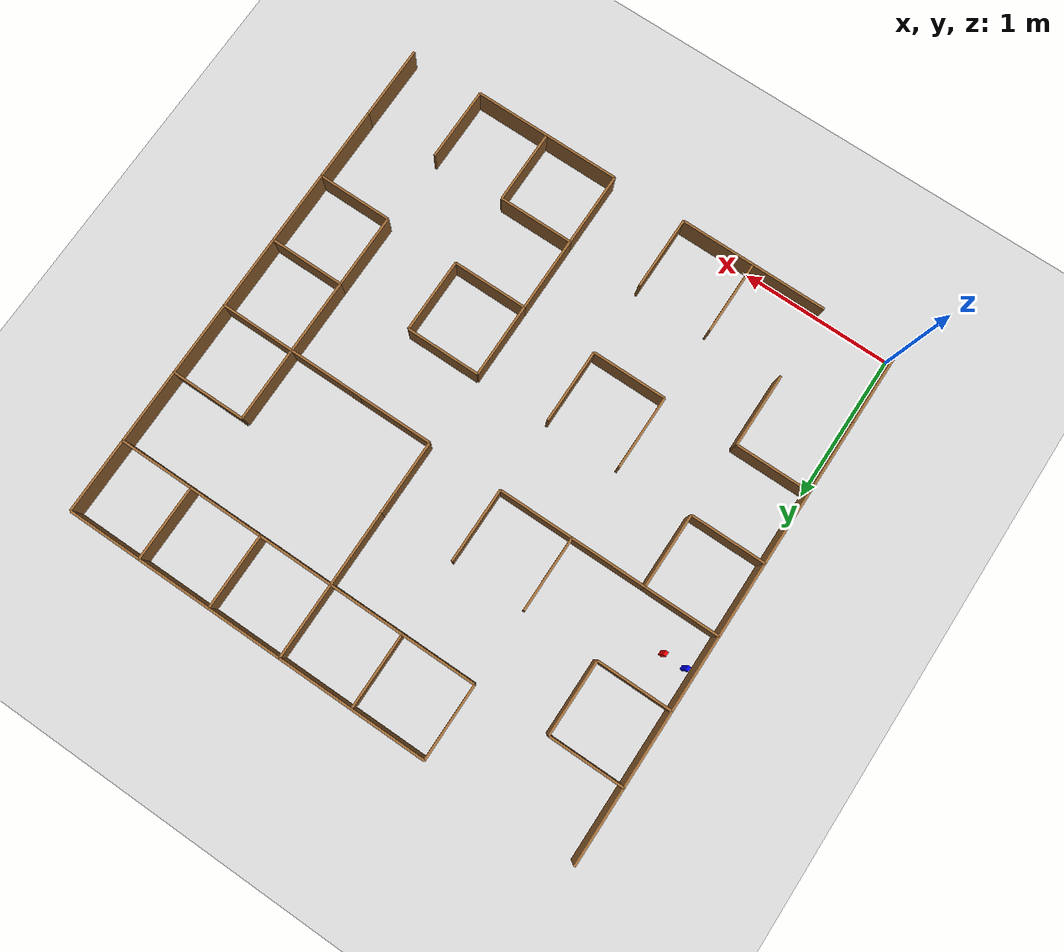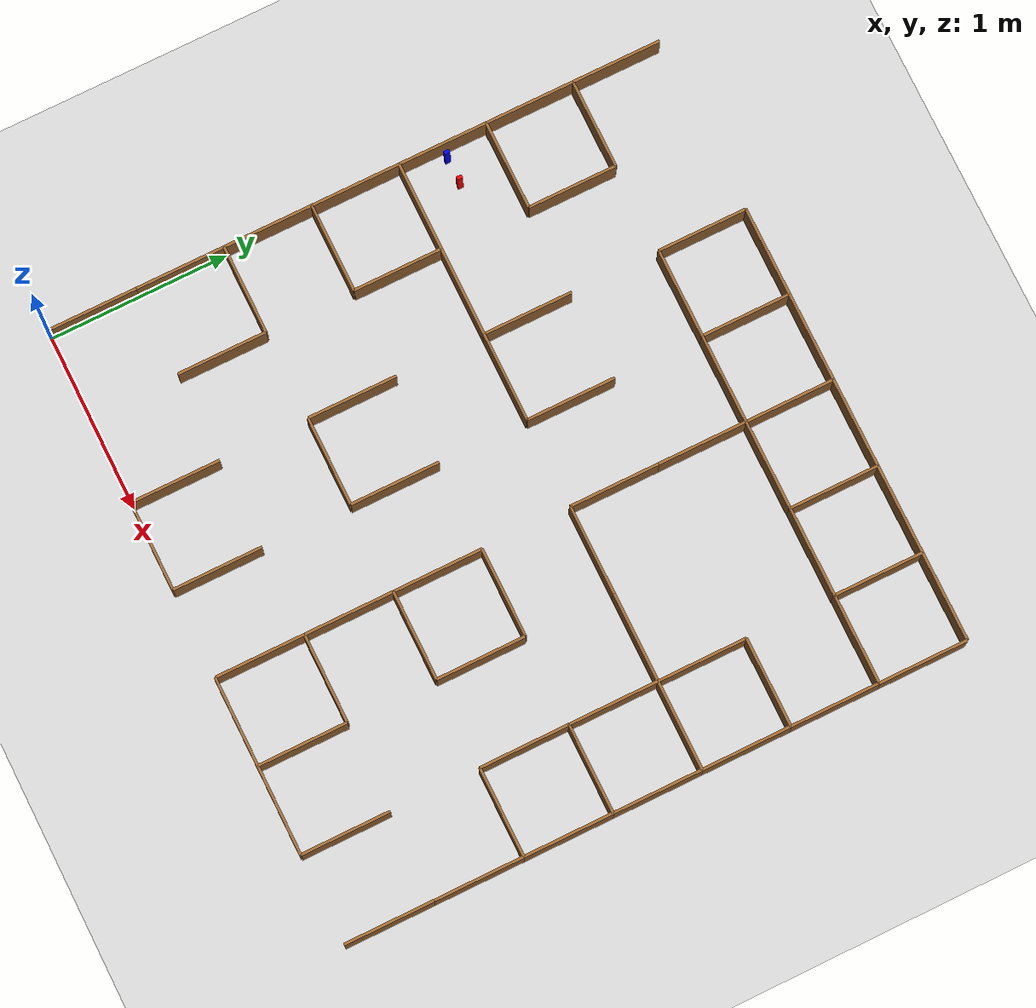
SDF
<?xml version="1.0" ?>
<sdf version="1.6">
  <world name="maze_world">
    <physics name="default_physics" default="0" type="ode">
      <max_step_size>0.001</max_step_size>
      <real_time_factor>1.0</real_time_factor>
      <real_time_update_rate>1000</real_time_update_rate>
    </physics>
    <scene>
      <ambient>0.4 0.4 0.4 1</ambient>
      <background>0.7 0.7 0.7 1</background>
      <shadows>true</shadows>
    </scene>
    <include><uri>model://ground_plane</uri></include>
    <include><uri>model://sun</uri></include>

    <!-- /gazebo/set_entity_state — used by manipulator_controller to
         teleport picked cubes (physical grasp on 25mm cubes is fragile,
         so we fall back to teleport once the gripper closes). -->
    <plugin name="gazebo_ros_state" filename="libgazebo_ros_state.so">
      <ros>
        <namespace>/gazebo</namespace>
      </ros>
      <update_rate>1.0</update_rate>
    </plugin>

    <model name="h_0">
      <static>true</static>
      <pose>0.750 0.000 0.100 0 0 0</pose>
      <link name="link">
        <collision name="col">
          <geometry><box><size>0.500 0.015 0.200</size></box></geometry>
        </collision>
        <visual name="vis">
          <geometry><box><size>0.500 0.015 0.200</size></box></geometry>
          <material>
            <ambient>0.6 0.4 0.2 1</ambient>
            <diffuse>0.6 0.4 0.2 1</diffuse>
          </material>
        </visual>
      </link>
    </model>

    <model name="h_1">
      <static>true</static>
      <pose>1.250 0.000 0.100 0 0 0</pose>
      <link name="link">
        <collision name="col">
          <geometry><box><size>0.500 0.015 0.200</size></box></geometry>
        </collision>
        <visual name="vis">
          <geometry><box><size>0.500 0.015 0.200</size></box></geometry>
          <material>
            <ambient>0.6 0.4 0.2 1</ambient>
            <diffuse>0.6 0.4 0.2 1</diffuse>
          </material>
        </visual>
      </link>
    </model>

    <model name="h_2">
      <static>true</static>
      <pose>2.250 0.000 0.100 0 0 0</pose>
      <link name="link">
        <collision name="col">
          <geometry><box><size>0.500 0.015 0.200</size></box></geometry>
        </collision>
        <visual name="vis">
          <geometry><box><size>0.500 0.015 0.200</size></box></geometry>
          <material>
            <ambient>0.6 0.4 0.2 1</ambient>
            <diffuse>0.6 0.4 0.2 1</diffuse>
          </material>
        </visual>
      </link>
    </model>

    <model name="h_3">
      <static>true</static>
      <pose>2.750 0.000 0.100 0 0 0</pose>
      <link name="link">
        <collision name="col">
          <geometry><box><size>0.500 0.015 0.200</size></box></geometry>
        </collision>
        <visual name="vis">
          <geometry><box><size>0.500 0.015 0.200</size></box></geometry>
          <material>
            <ambient>0.6 0.4 0.2 1</ambient>
            <diffuse>0.6 0.4 0.2 1</diffuse>
          </material>
        </visual>
      </link>
    </model>

    <model name="h_4">
      <static>true</static>
      <pose>2.250 0.500 0.100 0 0 0</pose>
      <link name="link">
        <collision name="col">
          <geometry><box><size>0.500 0.015 0.200</size></box></geometry>
        </collision>
        <visual name="vis">
          <geometry><box><size>0.500 0.015 0.200</size></box></geometry>
          <material>
            <ambient>0.6 0.4 0.2 1</ambient>
            <diffuse>0.6 0.4 0.2 1</diffuse>
          </material>
        </visual>
      </link>
    </model>

    <model name="h_5">
      <static>true</static>
      <pose>0.250 1.000 0.100 0 0 0</pose>
      <link name="link">
        <collision name="col">
          <geometry><box><size>0.500 0.015 0.200</size></box></geometry>
        </collision>
        <visual name="vis">
          <geometry><box><size>0.500 0.015 0.200</size></box></geometry>
          <material>
            <ambient>0.6 0.4 0.2 1</ambient>
            <diffuse>0.6 0.4 0.2 1</diffuse>
          </material>
        </visual>
      </link>
    </model>

    <model name="h_6">
      <static>true</static>
      <pose>1.250 1.000 0.100 0 0 0</pose>
      <link name="link">
        <collision name="col">
          <geometry><box><size>0.500 0.015 0.200</size></box></geometry>
        </collision>
        <visual name="vis">
          <geometry><box><size>0.500 0.015 0.200</size></box></geometry>
          <material>
            <ambient>0.6 0.4 0.2 1</ambient>
            <diffuse>0.6 0.4 0.2 1</diffuse>
          </material>
        </visual>
      </link>
    </model>

    <model name="h_7">
      <static>true</static>
      <pose>2.250 1.000 0.100 0 0 0</pose>
      <link name="link">
        <collision name="col">
          <geometry><box><size>0.500 0.015 0.200</size></box></geometry>
        </collision>
        <visual name="vis">
          <geometry><box><size>0.500 0.015 0.200</size></box></geometry>
          <material>
            <ambient>0.6 0.4 0.2 1</ambient>
            <diffuse>0.6 0.4 0.2 1</diffuse>
          </material>
        </visual>
      </link>
    </model>

    <model name="h_8">
      <static>true</static>
      <pose>3.250 1.000 0.100 0 0 0</pose>
      <link name="link">
        <collision name="col">
          <geometry><box><size>0.500 0.015 0.200</size></box></geometry>
        </collision>
        <visual name="vis">
          <geometry><box><size>0.500 0.015 0.200</size></box></geometry>
          <material>
            <ambient>0.6 0.4 0.2 1</ambient>
            <diffuse>0.6 0.4 0.2 1</diffuse>
          </material>
        </visual>
      </link>
    </model>

    <model name="h_9">
      <static>true</static>
      <pose>0.250 1.500 0.100 0 0 0</pose>
      <link name="link">
        <collision name="col">
          <geometry><box><size>0.500 0.015 0.200</size></box></geometry>
        </collision>
        <visual name="vis">
          <geometry><box><size>0.500 0.015 0.200</size></box></geometry>
          <material>
            <ambient>0.6 0.4 0.2 1</ambient>
            <diffuse>0.6 0.4 0.2 1</diffuse>
          </material>
        </visual>
      </link>
    </model>

    <model name="h_10">
      <static>true</static>
      <pose>2.250 1.500 0.100 0 0 0</pose>
      <link name="link">
        <collision name="col">
          <geometry><box><size>0.500 0.015 0.200</size></box></geometry>
        </collision>
        <visual name="vis">
          <geometry><box><size>0.500 0.015 0.200</size></box></geometry>
          <material>
            <ambient>0.6 0.4 0.2 1</ambient>
            <diffuse>0.6 0.4 0.2 1</diffuse>
          </material>
        </visual>
      </link>
    </model>

    <model name="h_11">
      <static>true</static>
      <pose>3.250 1.500 0.100 0 0 0</pose>
      <link name="link">
        <collision name="col">
          <geometry><box><size>0.500 0.015 0.200</size></box></geometry>
        </collision>
        <visual name="vis">
          <geometry><box><size>0.500 0.015 0.200</size></box></geometry>
          <material>
            <ambient>0.6 0.4 0.2 1</ambient>
            <diffuse>0.6 0.4 0.2 1</diffuse>
          </material>
        </visual>
      </link>
    </model>

    <model name="h_12">
      <static>true</static>
      <pose>0.250 2.000 0.100 0 0 0</pose>
      <link name="link">
        <collision name="col">
          <geometry><box><size>0.500 0.015 0.200</size></box></geometry>
        </collision>
        <visual name="vis">
          <geometry><box><size>0.500 0.015 0.200</size></box></geometry>
          <material>
            <ambient>0.6 0.4 0.2 1</ambient>
            <diffuse>0.6 0.4 0.2 1</diffuse>
          </material>
        </visual>
      </link>
    </model>

    <model name="h_13">
      <static>true</static>
      <pose>0.750 2.000 0.100 0 0 0</pose>
      <link name="link">
        <collision name="col">
          <geometry><box><size>0.500 0.015 0.200</size></box></geometry>
        </collision>
        <visual name="vis">
          <geometry><box><size>0.500 0.015 0.200</size></box></geometry>
          <material>
            <ambient>0.6 0.4 0.2 1</ambient>
            <diffuse>0.6 0.4 0.2 1</diffuse>
          </material>
        </visual>
      </link>
    </model>

    <model name="h_14">
      <static>true</static>
      <pose>1.250 2.000 0.100 0 0 0</pose>
      <link name="link">
        <collision name="col">
          <geometry><box><size>0.500 0.015 0.200</size></box></geometry>
        </collision>
        <visual name="vis">
          <geometry><box><size>0.500 0.015 0.200</size></box></geometry>
          <material>
            <ambient>0.6 0.4 0.2 1</ambient>
            <diffuse>0.6 0.4 0.2 1</diffuse>
          </material>
        </visual>
      </link>
    </model>

    <model name="h_15">
      <static>true</static>
      <pose>2.250 2.000 0.100 0 0 0</pose>
      <link name="link">
        <collision name="col">
          <geometry><box><size>0.500 0.015 0.200</size></box></geometry>
        </collision>
        <visual name="vis">
          <geometry><box><size>0.500 0.015 0.200</size></box></geometry>
          <material>
            <ambient>0.6 0.4 0.2 1</ambient>
            <diffuse>0.6 0.4 0.2 1</diffuse>
          </material>
        </visual>
      </link>
    </model>

    <model name="h_16">
      <static>true</static>
      <pose>2.750 2.000 0.100 0 0 0</pose>
      <link name="link">
        <collision name="col">
          <geometry><box><size>0.500 0.015 0.200</size></box></geometry>
        </collision>
        <visual name="vis">
          <geometry><box><size>0.500 0.015 0.200</size></box></geometry>
          <material>
            <ambient>0.6 0.4 0.2 1</ambient>
            <diffuse>0.6 0.4 0.2 1</diffuse>
          </material>
        </visual>
      </link>
    </model>

    <model name="h_17">
      <static>true</static>
      <pose>3.250 2.000 0.100 0 0 0</pose>
      <link name="link">
        <collision name="col">
          <geometry><box><size>0.500 0.015 0.200</size></box></geometry>
        </collision>
        <visual name="vis">
          <geometry><box><size>0.500 0.015 0.200</size></box></geometry>
          <material>
            <ambient>0.6 0.4 0.2 1</ambient>
            <diffuse>0.6 0.4 0.2 1</diffuse>
          </material>
        </visual>
      </link>
    </model>

    <model name="h_18">
      <static>true</static>
      <pose>0.250 2.500 0.100 0 0 0</pose>
      <link name="link">
        <collision name="col">
          <geometry><box><size>0.500 0.015 0.200</size></box></geometry>
        </collision>
        <visual name="vis">
          <geometry><box><size>0.500 0.015 0.200</size></box></geometry>
          <material>
            <ambient>0.6 0.4 0.2 1</ambient>
            <diffuse>0.6 0.4 0.2 1</diffuse>
          </material>
        </visual>
      </link>
    </model>

    <model name="h_19">
      <static>true</static>
      <pose>3.250 2.500 0.100 0 0 0</pose>
      <link name="link">
        <collision name="col">
          <geometry><box><size>0.500 0.015 0.200</size></box></geometry>
        </collision>
        <visual name="vis">
          <geometry><box><size>0.500 0.015 0.200</size></box></geometry>
          <material>
            <ambient>0.6 0.4 0.2 1</ambient>
            <diffuse>0.6 0.4 0.2 1</diffuse>
          </material>
        </visual>
      </link>
    </model>

    <model name="h_20">
      <static>true</static>
      <pose>0.250 3.000 0.100 0 0 0</pose>
      <link name="link">
        <collision name="col">
          <geometry><box><size>0.500 0.015 0.200</size></box></geometry>
        </collision>
        <visual name="vis">
          <geometry><box><size>0.500 0.015 0.200</size></box></geometry>
          <material>
            <ambient>0.6 0.4 0.2 1</ambient>
            <diffuse>0.6 0.4 0.2 1</diffuse>
          </material>
        </visual>
      </link>
    </model>

    <model name="h_21">
      <static>true</static>
      <pose>1.250 3.000 0.100 0 0 0</pose>
      <link name="link">
        <collision name="col">
          <geometry><box><size>0.500 0.015 0.200</size></box></geometry>
        </collision>
        <visual name="vis">
          <geometry><box><size>0.500 0.015 0.200</size></box></geometry>
          <material>
            <ambient>0.6 0.4 0.2 1</ambient>
            <diffuse>0.6 0.4 0.2 1</diffuse>
          </material>
        </visual>
      </link>
    </model>

    <model name="h_22">
      <static>true</static>
      <pose>1.750 3.000 0.100 0 0 0</pose>
      <link name="link">
        <collision name="col">
          <geometry><box><size>0.500 0.015 0.200</size></box></geometry>
        </collision>
        <visual name="vis">
          <geometry><box><size>0.500 0.015 0.200</size></box></geometry>
          <material>
            <ambient>0.6 0.4 0.2 1</ambient>
            <diffuse>0.6 0.4 0.2 1</diffuse>
          </material>
        </visual>
      </link>
    </model>

    <model name="h_23">
      <static>true</static>
      <pose>2.250 3.000 0.100 0 0 0</pose>
      <link name="link">
        <collision name="col">
          <geometry><box><size>0.500 0.015 0.200</size></box></geometry>
        </collision>
        <visual name="vis">
          <geometry><box><size>0.500 0.015 0.200</size></box></geometry>
          <material>
            <ambient>0.6 0.4 0.2 1</ambient>
            <diffuse>0.6 0.4 0.2 1</diffuse>
          </material>
        </visual>
      </link>
    </model>

    <model name="h_24">
      <static>true</static>
      <pose>2.750 3.000 0.100 0 0 0</pose>
      <link name="link">
        <collision name="col">
          <geometry><box><size>0.500 0.015 0.200</size></box></geometry>
        </collision>
        <visual name="vis">
          <geometry><box><size>0.500 0.015 0.200</size></box></geometry>
          <material>
            <ambient>0.6 0.4 0.2 1</ambient>
            <diffuse>0.6 0.4 0.2 1</diffuse>
          </material>
        </visual>
      </link>
    </model>

    <model name="h_25">
      <static>true</static>
      <pose>3.250 3.000 0.100 0 0 0</pose>
      <link name="link">
        <collision name="col">
          <geometry><box><size>0.500 0.015 0.200</size></box></geometry>
        </collision>
        <visual name="vis">
          <geometry><box><size>0.500 0.015 0.200</size></box></geometry>
          <material>
            <ambient>0.6 0.4 0.2 1</ambient>
            <diffuse>0.6 0.4 0.2 1</diffuse>
          </material>
        </visual>
      </link>
    </model>

    <model name="h_26">
      <static>true</static>
      <pose>1.250 3.500 0.100 0 0 0</pose>
      <link name="link">
        <collision name="col">
          <geometry><box><size>0.500 0.015 0.200</size></box></geometry>
        </collision>
        <visual name="vis">
          <geometry><box><size>0.500 0.015 0.200</size></box></geometry>
          <material>
            <ambient>0.6 0.4 0.2 1</ambient>
            <diffuse>0.6 0.4 0.2 1</diffuse>
          </material>
        </visual>
      </link>
    </model>

    <model name="h_27">
      <static>true</static>
      <pose>1.750 3.500 0.100 0 0 0</pose>
      <link name="link">
        <collision name="col">
          <geometry><box><size>0.500 0.015 0.200</size></box></geometry>
        </collision>
        <visual name="vis">
          <geometry><box><size>0.500 0.015 0.200</size></box></geometry>
          <material>
            <ambient>0.6 0.4 0.2 1</ambient>
            <diffuse>0.6 0.4 0.2 1</diffuse>
          </material>
        </visual>
      </link>
    </model>

    <model name="h_28">
      <static>true</static>
      <pose>2.250 3.500 0.100 0 0 0</pose>
      <link name="link">
        <collision name="col">
          <geometry><box><size>0.500 0.015 0.200</size></box></geometry>
        </collision>
        <visual name="vis">
          <geometry><box><size>0.500 0.015 0.200</size></box></geometry>
          <material>
            <ambient>0.6 0.4 0.2 1</ambient>
            <diffuse>0.6 0.4 0.2 1</diffuse>
          </material>
        </visual>
      </link>
    </model>

    <model name="h_29">
      <static>true</static>
      <pose>2.750 3.500 0.100 0 0 0</pose>
      <link name="link">
        <collision name="col">
          <geometry><box><size>0.500 0.015 0.200</size></box></geometry>
        </collision>
        <visual name="vis">
          <geometry><box><size>0.500 0.015 0.200</size></box></geometry>
          <material>
            <ambient>0.6 0.4 0.2 1</ambient>
            <diffuse>0.6 0.4 0.2 1</diffuse>
          </material>
        </visual>
      </link>
    </model>

    <model name="h_30">
      <static>true</static>
      <pose>3.250 3.500 0.100 0 0 0</pose>
      <link name="link">
        <collision name="col">
          <geometry><box><size>0.500 0.015 0.200</size></box></geometry>
        </collision>
        <visual name="vis">
          <geometry><box><size>0.500 0.015 0.200</size></box></geometry>
          <material>
            <ambient>0.6 0.4 0.2 1</ambient>
            <diffuse>0.6 0.4 0.2 1</diffuse>
          </material>
        </visual>
      </link>
    </model>

    <model name="v_31">
      <static>true</static>
      <pose>0.000 0.250 0.100 0 0 0</pose>
      <link name="link">
        <collision name="col">
          <geometry><box><size>0.015 0.500 0.200</size></box></geometry>
        </collision>
        <visual name="vis">
          <geometry><box><size>0.015 0.500 0.200</size></box></geometry>
          <material>
            <ambient>0.6 0.4 0.2 1</ambient>
            <diffuse>0.6 0.4 0.2 1</diffuse>
          </material>
        </visual>
      </link>
    </model>

    <model name="v_32">
      <static>true</static>
      <pose>0.000 0.750 0.100 0 0 0</pose>
      <link name="link">
        <collision name="col">
          <geometry><box><size>0.015 0.500 0.200</size></box></geometry>
        </collision>
        <visual name="vis">
          <geometry><box><size>0.015 0.500 0.200</size></box></geometry>
          <material>
            <ambient>0.6 0.4 0.2 1</ambient>
            <diffuse>0.6 0.4 0.2 1</diffuse>
          </material>
        </visual>
      </link>
    </model>

    <model name="v_33">
      <static>true</static>
      <pose>0.000 1.250 0.100 0 0 0</pose>
      <link name="link">
        <collision name="col">
          <geometry><box><size>0.015 0.500 0.200</size></box></geometry>
        </collision>
        <visual name="vis">
          <geometry><box><size>0.015 0.500 0.200</size></box></geometry>
          <material>
            <ambient>0.6 0.4 0.2 1</ambient>
            <diffuse>0.6 0.4 0.2 1</diffuse>
          </material>
        </visual>
      </link>
    </model>

    <model name="v_34">
      <static>true</static>
      <pose>0.000 1.750 0.100 0 0 0</pose>
      <link name="link">
        <collision name="col">
          <geometry><box><size>0.015 0.500 0.200</size></box></geometry>
        </collision>
        <visual name="vis">
          <geometry><box><size>0.015 0.500 0.200</size></box></geometry>
          <material>
            <ambient>0.6 0.4 0.2 1</ambient>
            <diffuse>0.6 0.4 0.2 1</diffuse>
          </material>
        </visual>
      </link>
    </model>

    <model name="v_35">
      <static>true</static>
      <pose>0.000 2.250 0.100 0 0 0</pose>
      <link name="link">
        <collision name="col">
          <geometry><box><size>0.015 0.500 0.200</size></box></geometry>
        </collision>
        <visual name="vis">
          <geometry><box><size>0.015 0.500 0.200</size></box></geometry>
          <material>
            <ambient>0.6 0.4 0.2 1</ambient>
            <diffuse>0.6 0.4 0.2 1</diffuse>
          </material>
        </visual>
      </link>
    </model>

    <model name="v_36">
      <static>true</static>
      <pose>0.000 2.750 0.100 0 0 0</pose>
      <link name="link">
        <collision name="col">
          <geometry><box><size>0.015 0.500 0.200</size></box></geometry>
        </collision>
        <visual name="vis">
          <geometry><box><size>0.015 0.500 0.200</size></box></geometry>
          <material>
            <ambient>0.6 0.4 0.2 1</ambient>
            <diffuse>0.6 0.4 0.2 1</diffuse>
          </material>
        </visual>
      </link>
    </model>

    <model name="v_37">
      <static>true</static>
      <pose>0.000 3.250 0.100 0 0 0</pose>
      <link name="link">
        <collision name="col">
          <geometry><box><size>0.015 0.500 0.200</size></box></geometry>
        </collision>
        <visual name="vis">
          <geometry><box><size>0.015 0.500 0.200</size></box></geometry>
          <material>
            <ambient>0.6 0.4 0.2 1</ambient>
            <diffuse>0.6 0.4 0.2 1</diffuse>
          </material>
        </visual>
      </link>
    </model>

    <model name="v_38">
      <static>true</static>
      <pose>0.500 0.750 0.100 0 0 0</pose>
      <link name="link">
        <collision name="col">
          <geometry><box><size>0.015 0.500 0.200</size></box></geometry>
        </collision>
        <visual name="vis">
          <geometry><box><size>0.015 0.500 0.200</size></box></geometry>
          <material>
            <ambient>0.6 0.4 0.2 1</ambient>
            <diffuse>0.6 0.4 0.2 1</diffuse>
          </material>
        </visual>
      </link>
    </model>

    <model name="v_39">
      <static>true</static>
      <pose>0.500 1.750 0.100 0 0 0</pose>
      <link name="link">
        <collision name="col">
          <geometry><box><size>0.015 0.500 0.200</size></box></geometry>
        </collision>
        <visual name="vis">
          <geometry><box><size>0.015 0.500 0.200</size></box></geometry>
          <material>
            <ambient>0.6 0.4 0.2 1</ambient>
            <diffuse>0.6 0.4 0.2 1</diffuse>
          </material>
        </visual>
      </link>
    </model>

    <model name="v_40">
      <static>true</static>
      <pose>0.500 2.750 0.100 0 0 0</pose>
      <link name="link">
        <collision name="col">
          <geometry><box><size>0.015 0.500 0.200</size></box></geometry>
        </collision>
        <visual name="vis">
          <geometry><box><size>0.015 0.500 0.200</size></box></geometry>
          <material>
            <ambient>0.6 0.4 0.2 1</ambient>
            <diffuse>0.6 0.4 0.2 1</diffuse>
          </material>
        </visual>
      </link>
    </model>

    <model name="v_41">
      <static>true</static>
      <pose>1.000 0.250 0.100 0 0 0</pose>
      <link name="link">
        <collision name="col">
          <geometry><box><size>0.015 0.500 0.200</size></box></geometry>
        </collision>
        <visual name="vis">
          <geometry><box><size>0.015 0.500 0.200</size></box></geometry>
          <material>
            <ambient>0.6 0.4 0.2 1</ambient>
            <diffuse>0.6 0.4 0.2 1</diffuse>
          </material>
        </visual>
      </link>
    </model>

    <model name="v_42">
      <static>true</static>
      <pose>1.000 1.250 0.100 0 0 0</pose>
      <link name="link">
        <collision name="col">
          <geometry><box><size>0.015 0.500 0.200</size></box></geometry>
        </collision>
        <visual name="vis">
          <geometry><box><size>0.015 0.500 0.200</size></box></geometry>
          <material>
            <ambient>0.6 0.4 0.2 1</ambient>
            <diffuse>0.6 0.4 0.2 1</diffuse>
          </material>
        </visual>
      </link>
    </model>

    <model name="v_43">
      <static>true</static>
      <pose>1.000 2.250 0.100 0 0 0</pose>
      <link name="link">
        <collision name="col">
          <geometry><box><size>0.015 0.500 0.200</size></box></geometry>
        </collision>
        <visual name="vis">
          <geometry><box><size>0.015 0.500 0.200</size></box></geometry>
          <material>
            <ambient>0.6 0.4 0.2 1</ambient>
            <diffuse>0.6 0.4 0.2 1</diffuse>
          </material>
        </visual>
      </link>
    </model>

    <model name="v_44">
      <static>true</static>
      <pose>1.000 3.250 0.100 0 0 0</pose>
      <link name="link">
        <collision name="col">
          <geometry><box><size>0.015 0.500 0.200</size></box></geometry>
        </collision>
        <visual name="vis">
          <geometry><box><size>0.015 0.500 0.200</size></box></geometry>
          <material>
            <ambient>0.6 0.4 0.2 1</ambient>
            <diffuse>0.6 0.4 0.2 1</diffuse>
          </material>
        </visual>
      </link>
    </model>

    <model name="v_45">
      <static>true</static>
      <pose>1.500 0.250 0.100 0 0 0</pose>
      <link name="link">
        <collision name="col">
          <geometry><box><size>0.015 0.500 0.200</size></box></geometry>
        </collision>
        <visual name="vis">
          <geometry><box><size>0.015 0.500 0.200</size></box></geometry>
          <material>
            <ambient>0.6 0.4 0.2 1</ambient>
            <diffuse>0.6 0.4 0.2 1</diffuse>
          </material>
        </visual>
      </link>
    </model>

    <model name="v_46">
      <static>true</static>
      <pose>1.500 1.250 0.100 0 0 0</pose>
      <link name="link">
        <collision name="col">
          <geometry><box><size>0.015 0.500 0.200</size></box></geometry>
        </collision>
        <visual name="vis">
          <geometry><box><size>0.015 0.500 0.200</size></box></geometry>
          <material>
            <ambient>0.6 0.4 0.2 1</ambient>
            <diffuse>0.6 0.4 0.2 1</diffuse>
          </material>
        </visual>
      </link>
    </model>

    <model name="v_47">
      <static>true</static>
      <pose>1.500 2.250 0.100 0 0 0</pose>
      <link name="link">
        <collision name="col">
          <geometry><box><size>0.015 0.500 0.200</size></box></geometry>
        </collision>
        <visual name="vis">
          <geometry><box><size>0.015 0.500 0.200</size></box></geometry>
          <material>
            <ambient>0.6 0.4 0.2 1</ambient>
            <diffuse>0.6 0.4 0.2 1</diffuse>
          </material>
        </visual>
      </link>
    </model>

    <model name="v_48">
      <static>true</static>
      <pose>1.500 3.250 0.100 0 0 0</pose>
      <link name="link">
        <collision name="col">
          <geometry><box><size>0.015 0.500 0.200</size></box></geometry>
        </collision>
        <visual name="vis">
          <geometry><box><size>0.015 0.500 0.200</size></box></geometry>
          <material>
            <ambient>0.6 0.4 0.2 1</ambient>
            <diffuse>0.6 0.4 0.2 1</diffuse>
          </material>
        </visual>
      </link>
    </model>

    <model name="v_49">
      <static>true</static>
      <pose>2.000 0.250 0.100 0 0 0</pose>
      <link name="link">
        <collision name="col">
          <geometry><box><size>0.015 0.500 0.200</size></box></geometry>
        </collision>
        <visual name="vis">
          <geometry><box><size>0.015 0.500 0.200</size></box></geometry>
          <material>
            <ambient>0.6 0.4 0.2 1</ambient>
            <diffuse>0.6 0.4 0.2 1</diffuse>
          </material>
        </visual>
      </link>
    </model>

    <model name="v_50">
      <static>true</static>
      <pose>2.000 0.750 0.100 0 0 0</pose>
      <link name="link">
        <collision name="col">
          <geometry><box><size>0.015 0.500 0.200</size></box></geometry>
        </collision>
        <visual name="vis">
          <geometry><box><size>0.015 0.500 0.200</size></box></geometry>
          <material>
            <ambient>0.6 0.4 0.2 1</ambient>
            <diffuse>0.6 0.4 0.2 1</diffuse>
          </material>
        </visual>
      </link>
    </model>

    <model name="v_51">
      <static>true</static>
      <pose>2.000 1.250 0.100 0 0 0</pose>
      <link name="link">
        <collision name="col">
          <geometry><box><size>0.015 0.500 0.200</size></box></geometry>
        </collision>
        <visual name="vis">
          <geometry><box><size>0.015 0.500 0.200</size></box></geometry>
          <material>
            <ambient>0.6 0.4 0.2 1</ambient>
            <diffuse>0.6 0.4 0.2 1</diffuse>
          </material>
        </visual>
      </link>
    </model>

    <model name="v_52">
      <static>true</static>
      <pose>2.000 2.250 0.100 0 0 0</pose>
      <link name="link">
        <collision name="col">
          <geometry><box><size>0.015 0.500 0.200</size></box></geometry>
        </collision>
        <visual name="vis">
          <geometry><box><size>0.015 0.500 0.200</size></box></geometry>
          <material>
            <ambient>0.6 0.4 0.2 1</ambient>
            <diffuse>0.6 0.4 0.2 1</diffuse>
          </material>
        </visual>
      </link>
    </model>

    <model name="v_53">
      <static>true</static>
      <pose>2.000 2.750 0.100 0 0 0</pose>
      <link name="link">
        <collision name="col">
          <geometry><box><size>0.015 0.500 0.200</size></box></geometry>
        </collision>
        <visual name="vis">
          <geometry><box><size>0.015 0.500 0.200</size></box></geometry>
          <material>
            <ambient>0.6 0.4 0.2 1</ambient>
            <diffuse>0.6 0.4 0.2 1</diffuse>
          </material>
        </visual>
      </link>
    </model>

    <model name="v_54">
      <static>true</static>
      <pose>2.000 3.250 0.100 0 0 0</pose>
      <link name="link">
        <collision name="col">
          <geometry><box><size>0.015 0.500 0.200</size></box></geometry>
        </collision>
        <visual name="vis">
          <geometry><box><size>0.015 0.500 0.200</size></box></geometry>
          <material>
            <ambient>0.6 0.4 0.2 1</ambient>
            <diffuse>0.6 0.4 0.2 1</diffuse>
          </material>
        </visual>
      </link>
    </model>

    <model name="v_55">
      <static>true</static>
      <pose>2.500 0.250 0.100 0 0 0</pose>
      <link name="link">
        <collision name="col">
          <geometry><box><size>0.015 0.500 0.200</size></box></geometry>
        </collision>
        <visual name="vis">
          <geometry><box><size>0.015 0.500 0.200</size></box></geometry>
          <material>
            <ambient>0.6 0.4 0.2 1</ambient>
            <diffuse>0.6 0.4 0.2 1</diffuse>
          </material>
        </visual>
      </link>
    </model>

    <model name="v_56">
      <static>true</static>
      <pose>2.500 1.250 0.100 0 0 0</pose>
      <link name="link">
        <collision name="col">
          <geometry><box><size>0.015 0.500 0.200</size></box></geometry>
        </collision>
        <visual name="vis">
          <geometry><box><size>0.015 0.500 0.200</size></box></geometry>
          <material>
            <ambient>0.6 0.4 0.2 1</ambient>
            <diffuse>0.6 0.4 0.2 1</diffuse>
          </material>
        </visual>
      </link>
    </model>

    <model name="v_57">
      <static>true</static>
      <pose>2.500 3.250 0.100 0 0 0</pose>
      <link name="link">
        <collision name="col">
          <geometry><box><size>0.015 0.500 0.200</size></box></geometry>
        </collision>
        <visual name="vis">
          <geometry><box><size>0.015 0.500 0.200</size></box></geometry>
          <material>
            <ambient>0.6 0.4 0.2 1</ambient>
            <diffuse>0.6 0.4 0.2 1</diffuse>
          </material>
        </visual>
      </link>
    </model>

    <model name="v_58">
      <static>true</static>
      <pose>3.000 0.250 0.100 0 0 0</pose>
      <link name="link">
        <collision name="col">
          <geometry><box><size>0.015 0.500 0.200</size></box></geometry>
        </collision>
        <visual name="vis">
          <geometry><box><size>0.015 0.500 0.200</size></box></geometry>
          <material>
            <ambient>0.6 0.4 0.2 1</ambient>
            <diffuse>0.6 0.4 0.2 1</diffuse>
          </material>
        </visual>
      </link>
    </model>

    <model name="v_59">
      <static>true</static>
      <pose>3.000 1.250 0.100 0 0 0</pose>
      <link name="link">
        <collision name="col">
          <geometry><box><size>0.015 0.500 0.200</size></box></geometry>
        </collision>
        <visual name="vis">
          <geometry><box><size>0.015 0.500 0.200</size></box></geometry>
          <material>
            <ambient>0.6 0.4 0.2 1</ambient>
            <diffuse>0.6 0.4 0.2 1</diffuse>
          </material>
        </visual>
      </link>
    </model>

    <model name="v_60">
      <static>true</static>
      <pose>3.000 1.750 0.100 0 0 0</pose>
      <link name="link">
        <collision name="col">
          <geometry><box><size>0.015 0.500 0.200</size></box></geometry>
        </collision>
        <visual name="vis">
          <geometry><box><size>0.015 0.500 0.200</size></box></geometry>
          <material>
            <ambient>0.6 0.4 0.2 1</ambient>
            <diffuse>0.6 0.4 0.2 1</diffuse>
          </material>
        </visual>
      </link>
    </model>

    <model name="v_61">
      <static>true</static>
      <pose>3.000 2.250 0.100 0 0 0</pose>
      <link name="link">
        <collision name="col">
          <geometry><box><size>0.015 0.500 0.200</size></box></geometry>
        </collision>
        <visual name="vis">
          <geometry><box><size>0.015 0.500 0.200</size></box></geometry>
          <material>
            <ambient>0.6 0.4 0.2 1</ambient>
            <diffuse>0.6 0.4 0.2 1</diffuse>
          </material>
        </visual>
      </link>
    </model>

    <model name="v_62">
      <static>true</static>
      <pose>3.000 3.250 0.100 0 0 0</pose>
      <link name="link">
        <collision name="col">
          <geometry><box><size>0.015 0.500 0.200</size></box></geometry>
        </collision>
        <visual name="vis">
          <geometry><box><size>0.015 0.500 0.200</size></box></geometry>
          <material>
            <ambient>0.6 0.4 0.2 1</ambient>
            <diffuse>0.6 0.4 0.2 1</diffuse>
          </material>
        </visual>
      </link>
    </model>

    <model name="v_63">
      <static>true</static>
      <pose>3.500 0.250 0.100 0 0 0</pose>
      <link name="link">
        <collision name="col">
          <geometry><box><size>0.015 0.500 0.200</size></box></geometry>
        </collision>
        <visual name="vis">
          <geometry><box><size>0.015 0.500 0.200</size></box></geometry>
          <material>
            <ambient>0.6 0.4 0.2 1</ambient>
            <diffuse>0.6 0.4 0.2 1</diffuse>
          </material>
        </visual>
      </link>
    </model>

    <model name="v_64">
      <static>true</static>
      <pose>3.500 0.750 0.100 0 0 0</pose>
      <link name="link">
        <collision name="col">
          <geometry><box><size>0.015 0.500 0.200</size></box></geometry>
        </collision>
        <visual name="vis">
          <geometry><box><size>0.015 0.500 0.200</size></box></geometry>
          <material>
            <ambient>0.6 0.4 0.2 1</ambient>
            <diffuse>0.6 0.4 0.2 1</diffuse>
          </material>
        </visual>
      </link>
    </model>

    <model name="v_65">
      <static>true</static>
      <pose>3.500 1.250 0.100 0 0 0</pose>
      <link name="link">
        <collision name="col">
          <geometry><box><size>0.015 0.500 0.200</size></box></geometry>
        </collision>
        <visual name="vis">
          <geometry><box><size>0.015 0.500 0.200</size></box></geometry>
          <material>
            <ambient>0.6 0.4 0.2 1</ambient>
            <diffuse>0.6 0.4 0.2 1</diffuse>
          </material>
        </visual>
      </link>
    </model>

    <model name="v_66">
      <static>true</static>
      <pose>3.500 1.750 0.100 0 0 0</pose>
      <link name="link">
        <collision name="col">
          <geometry><box><size>0.015 0.500 0.200</size></box></geometry>
        </collision>
        <visual name="vis">
          <geometry><box><size>0.015 0.500 0.200</size></box></geometry>
          <material>
            <ambient>0.6 0.4 0.2 1</ambient>
            <diffuse>0.6 0.4 0.2 1</diffuse>
          </material>
        </visual>
      </link>
    </model>

    <model name="v_67">
      <static>true</static>
      <pose>3.500 2.250 0.100 0 0 0</pose>
      <link name="link">
        <collision name="col">
          <geometry><box><size>0.015 0.500 0.200</size></box></geometry>
        </collision>
        <visual name="vis">
          <geometry><box><size>0.015 0.500 0.200</size></box></geometry>
          <material>
            <ambient>0.6 0.4 0.2 1</ambient>
            <diffuse>0.6 0.4 0.2 1</diffuse>
          </material>
        </visual>
      </link>
    </model>

    <model name="v_68">
      <static>true</static>
      <pose>3.500 2.750 0.100 0 0 0</pose>
      <link name="link">
        <collision name="col">
          <geometry><box><size>0.015 0.500 0.200</size></box></geometry>
        </collision>
        <visual name="vis">
          <geometry><box><size>0.015 0.500 0.200</size></box></geometry>
          <material>
            <ambient>0.6 0.4 0.2 1</ambient>
            <diffuse>0.6 0.4 0.2 1</diffuse>
          </material>
        </visual>
      </link>
    </model>

    <model name="v_69">
      <static>true</static>
      <pose>3.500 3.250 0.100 0 0 0</pose>
      <link name="link">
        <collision name="col">
          <geometry><box><size>0.015 0.500 0.200</size></box></geometry>
        </collision>
        <visual name="vis">
          <geometry><box><size>0.015 0.500 0.200</size></box></geometry>
          <material>
            <ambient>0.6 0.4 0.2 1</ambient>
            <diffuse>0.6 0.4 0.2 1</diffuse>
          </material>
        </visual>
      </link>
    </model>

    <model name="object_1">
      <static>false</static>
      <pose>0.200 2.250 0.100 0 0 0</pose>
      <link name="link">
        <inertial>
          <mass>0.02</mass>
          <inertia><ixx>7e-5</ixx><iyy>7e-5</iyy><izz>2e-6</izz><ixy>0</ixy><ixz>0</ixz><iyz>0</iyz></inertia>
        </inertial>
        <collision name="col"><geometry><box><size>0.02 0.03 0.20</size></box></geometry></collision>
        <visual name="vis">
          <material><ambient>1.0 0.0 0.0 1</ambient><diffuse>1.0 0.0 0.0 1</diffuse></material>
          <geometry><box><size>0.02 0.03 0.20</size></box></geometry>
        </visual>
      </link>
    </model>

    <model name="object_2">
      <static>false</static>
      <pose>0.050 2.250 0.100 0 0 0</pose>
      <link name="link">
        <inertial>
          <mass>0.02</mass>
          <inertia><ixx>7e-5</ixx><iyy>7e-5</iyy><izz>2e-6</izz><ixy>0</ixy><ixz>0</ixz><iyz>0</iyz></inertia>
        </inertial>
        <collision name="col"><geometry><box><size>0.02 0.03 0.20</size></box></geometry></collision>
        <visual name="vis">
          <material><ambient>0.0 0.0 1.0 1</ambient><diffuse>0.0 0.0 1.0 1</diffuse></material>
          <geometry><box><size>0.02 0.03 0.20</size></box></geometry>
        </visual>
      </link>
    </model>
  </world>
</sdf>
